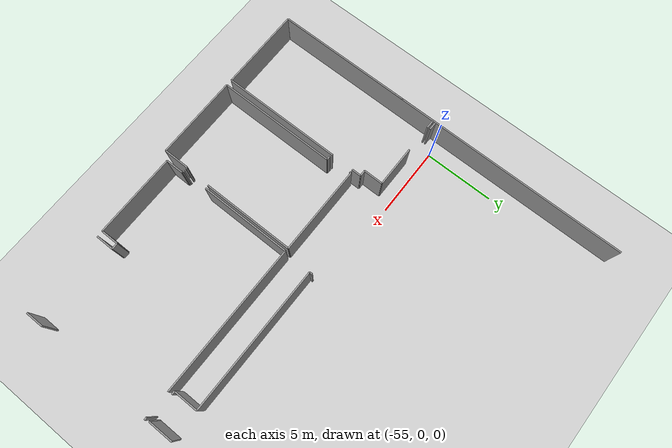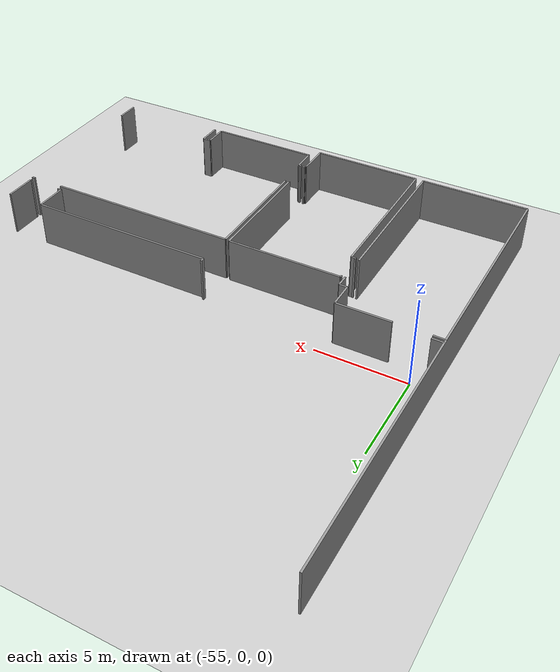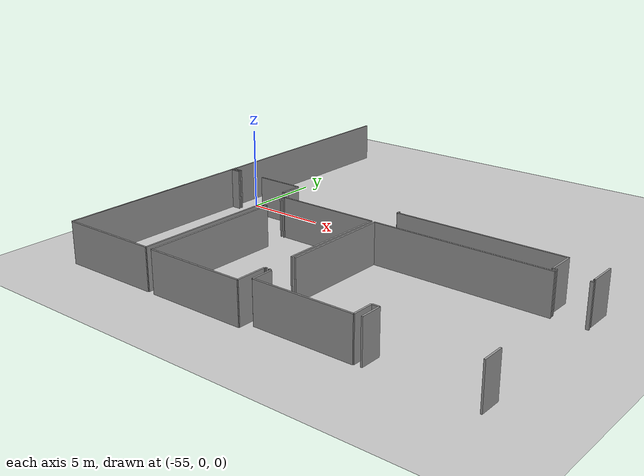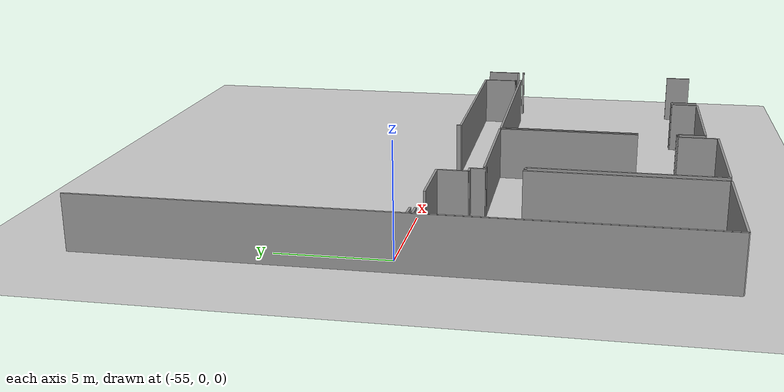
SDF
<sdf version="1.6">
 <world name="default">
  <model name="ground_plane">
   <static>1</static>
   <link name="link">
    <collision name="collision">
     <geometry><plane><normal>0 0 1</normal><size>100 100</size></plane></geometry>
     <surface><friction><ode><mu>100</mu><mu2>50</mu2></ode></friction></surface>
    </collision>
    <visual name="visual">
     <cast_shadows>0</cast_shadows>
     <geometry><plane><normal>0 0 1</normal><size>100 100</size></plane></geometry>
     <material>
      <script><uri>file://media/materials/scripts/gazebo.material</uri><name>Gazebo/Grey</name></script>
     </material>
    </visual>
   </link>
  </model>
  <model name="0510040943_A-40">
   <static>1</static>
   <link name="Wall_37">
    <collision name="Wall_37_Collision">
     <geometry><box><size>1.75153498757 0.1 2.5</size></box></geometry>
     <pose>0.875767493784 0 1.25 0 0 0</pose>
    </collision>
    <visual name="Wall_37_Visual">
     <pose>0.875767493784 0 1.25 0 0 0</pose>
     <geometry><box><size>1.75153498757 0.1 2.5</size></box></geometry>
     <material>
      <script><uri>file://media/materials/scripts/gazebo.material</uri><name>Gazebo/Grey</name></script>
      <ambient>1 1 1 1</ambient>
     </material>
    </visual>
    <pose>25.5160602831 -14.3398284873 0 0 0 -1.57079632679</pose>
   </link>
   <link name="Wall_38">
    <collision name="Wall_38_Collision">
     <geometry><box><size>0.0550565788806 0.1 2.5</size></box></geometry>
     <pose>0.0275282894403 0 1.25 0 0 0</pose>
    </collision>
    <visual name="Wall_38_Visual">
     <pose>0.0275282894403 0 1.25 0 0 0</pose>
     <geometry><box><size>0.0550565788806 0.1 2.5</size></box></geometry>
     <material>
      <script><uri>file://media/materials/scripts/gazebo.material</uri><name>Gazebo/Grey</name></script>
      <ambient>1 1 1 1</ambient>
     </material>
    </visual>
    <pose>25.5160602831 -16.0913634749 0 0 0 3.14159265359</pose>
   </link>
   <link name="Wall_39">
    <collision name="Wall_39_Collision">
     <geometry><box><size>0.224793220683 0.1 2.5</size></box></geometry>
     <pose>0.112396610342 0 1.25 0 0 0</pose>
    </collision>
    <visual name="Wall_39_Visual">
     <pose>0.112396610342 0 1.25 0 0 0</pose>
     <geometry><box><size>0.224793220683 0.1 2.5</size></box></geometry>
     <material>
      <script><uri>file://media/materials/scripts/gazebo.material</uri><name>Gazebo/Grey</name></script>
      <ambient>1 1 1 1</ambient>
     </material>
    </visual>
    <pose>23.5860354189 -16.0913634749 0 0 0 3.14159265359</pose>
   </link>
   <link name="Wall_40">
    <collision name="Wall_40_Collision">
     <geometry><box><size>1.73453595169 0.1 2.5</size></box></geometry>
     <pose>0.867267975846 0 1.25 0 0 0</pose>
    </collision>
    <visual name="Wall_40_Visual">
     <pose>0.867267975846 0 1.25 0 0 0</pose>
     <geometry><box><size>1.73453595169 0.1 2.5</size></box></geometry>
     <material>
      <script><uri>file://media/materials/scripts/gazebo.material</uri><name>Gazebo/Grey</name></script>
      <ambient>1 1 1 1</ambient>
     </material>
    </visual>
    <pose>23.3612421982 -16.0913634749 0 0 0 1.57079632679</pose>
   </link>
   <link name="Wall_41">
    <collision name="Wall_41_Collision">
     <geometry><box><size>10.3937687116 0.1 2.5</size></box></geometry>
     <pose>5.19688435581 0 1.25 0 0 0</pose>
    </collision>
    <visual name="Wall_41_Visual">
     <pose>5.19688435581 0 1.25 0 0 0</pose>
     <geometry><box><size>10.3937687116 0.1 2.5</size></box></geometry>
     <material>
      <script><uri>file://media/materials/scripts/gazebo.material</uri><name>Gazebo/Grey</name></script>
      <ambient>1 1 1 1</ambient>
     </material>
    </visual>
    <pose>23.3612421982 -14.3568275232 0 0 0 3.14159265359</pose>
   </link>
   <link name="Wall_42">
    <collision name="Wall_42_Collision">
     <geometry><box><size>0.20310042117 0.1 2.5</size></box></geometry>
     <pose>0.101550210585 0 1.25 0 0 0</pose>
    </collision>
    <visual name="Wall_42_Visual">
     <pose>0.101550210585 0 1.25 0 0 0</pose>
     <geometry><box><size>0.20310042117 0.1 2.5</size></box></geometry>
     <material>
      <script><uri>file://media/materials/scripts/gazebo.material</uri><name>Gazebo/Grey</name></script>
      <ambient>1 1 1 1</ambient>
     </material>
    </visual>
    <pose>12.9674734866 -14.3568275232 0 0 0 1.57079632679</pose>
   </link>
   <link name="Wall_44">
    <collision name="Wall_44_Collision">
     <geometry><box><size>0.618722188753 0.1 2.5</size></box></geometry>
     <pose>0.309361094376 0 1.25 0 0 0</pose>
    </collision>
    <visual name="Wall_44_Visual">
     <pose>0.309361094376 0 1.25 0 0 0</pose>
     <geometry><box><size>0.618722188753 0.1 2.5</size></box></geometry>
     <material>
      <script><uri>file://media/materials/scripts/gazebo.material</uri><name>Gazebo/Grey</name></script>
      <ambient>1 1 1 1</ambient>
     </material>
    </visual>
    <pose>0.633277515604 -14.153727102 0 0 0 3.11883202364</pose>
   </link>
   <link name="Wall_45">
    <collision name="Wall_45_Collision">
     <geometry><box><size>12.3845587862 0.1 2.5</size></box></geometry>
     <pose>6.19227939311 0 1.25 0 0 0</pose>
    </collision>
    <visual name="Wall_45_Visual">
     <pose>6.19227939311 0 1.25 0 0 0</pose>
     <geometry><box><size>12.3845587862 0.1 2.5</size></box></geometry>
     <material>
      <script><uri>file://media/materials/scripts/gazebo.material</uri><name>Gazebo/Grey</name></script>
      <ambient>1 1 1 1</ambient>
     </material>
    </visual>
    <pose>0.00976810270462 -26.7413863094 0 0 0 1.57079632679</pose>
   </link>
   <link name="Wall_46">
    <collision name="Wall_46_Collision">
     <geometry><box><size>0.63454610037 0.1 2.5</size></box></geometry>
     <pose>0.317273050185 0 1.25 0 0 0</pose>
    </collision>
    <visual name="Wall_46_Visual">
     <pose>0.317273050185 0 1.25 0 0 0</pose>
     <geometry><box><size>0.63454610037 0.1 2.5</size></box></geometry>
     <material>
      <script><uri>file://media/materials/scripts/gazebo.material</uri><name>Gazebo/Grey</name></script>
      <ambient>1 1 1 1</ambient>
     </material>
    </visual>
    <pose>0.00976810270462 -14.3568275232 0 0 0 0.0</pose>
   </link>
   <link name="Wall_47">
    <collision name="Wall_47_Collision">
     <geometry><box><size>2.96404830771 0.1 2.5</size></box></geometry>
     <pose>1.48202415385 0 1.25 0 0 0</pose>
    </collision>
    <visual name="Wall_47_Visual">
     <pose>1.48202415385 0 1.25 0 0 0</pose>
     <geometry><box><size>2.96404830771 0.1 2.5</size></box></geometry>
     <material>
      <script><uri>file://media/materials/scripts/gazebo.material</uri><name>Gazebo/Grey</name></script>
      <ambient>1 1 1 1</ambient>
     </material>
    </visual>
    <pose>2.63802202263 -14.3568275232 0 0 0 0.0</pose>
   </link>
   <link name="Wall_48">
    <collision name="Wall_48_Collision">
     <geometry><box><size>1.39138377226 0.1 2.5</size></box></geometry>
     <pose>0.695691886132 0 1.25 0 0 0</pose>
    </collision>
    <visual name="Wall_48_Visual">
     <pose>0.695691886132 0 1.25 0 0 0</pose>
     <geometry><box><size>1.39138377226 0.1 2.5</size></box></geometry>
     <material>
      <script><uri>file://media/materials/scripts/gazebo.material</uri><name>Gazebo/Grey</name></script>
      <ambient>1 1 1 1</ambient>
     </material>
    </visual>
    <pose>5.60207033034 -14.3568275232 0 0 0 -1.57079632679</pose>
   </link>
   <link name="Wall_49">
    <collision name="Wall_49_Collision">
     <geometry><box><size>0.431699396154 0.1 2.5</size></box></geometry>
     <pose>0.215849698077 0 1.25 0 0 0</pose>
    </collision>
    <visual name="Wall_49_Visual">
     <pose>0.215849698077 0 1.25 0 0 0</pose>
     <geometry><box><size>0.431699396154 0.1 2.5</size></box></geometry>
     <material>
      <script><uri>file://media/materials/scripts/gazebo.material</uri><name>Gazebo/Grey</name></script>
      <ambient>1 1 1 1</ambient>
     </material>
    </visual>
    <pose>5.60207033034 -15.7482112955 0 0 0 0.0</pose>
   </link>
   <link name="Wall_50">
    <collision name="Wall_50_Collision">
     <geometry><box><size>0.681864312173 0.1 2.5</size></box></geometry>
     <pose>0.340932156087 0 1.25 0 0 0</pose>
    </collision>
    <visual name="Wall_50_Visual">
     <pose>0.340932156087 0 1.25 0 0 0</pose>
     <geometry><box><size>0.681864312173 0.1 2.5</size></box></geometry>
     <material>
      <script><uri>file://media/materials/scripts/gazebo.material</uri><name>Gazebo/Grey</name></script>
      <ambient>1 1 1 1</ambient>
     </material>
    </visual>
    <pose>6.03376972649 -15.7482112955 0 0 0 -1.57079632679</pose>
   </link>
   <link name="Wall_51">
    <collision name="Wall_51_Collision">
     <geometry><box><size>8.67889582382 0.1 2.5</size></box></geometry>
     <pose>4.33944791191 0 1.25 0 0 0</pose>
    </collision>
    <visual name="Wall_51_Visual">
     <pose>4.33944791191 0 1.25 0 0 0</pose>
     <geometry><box><size>8.67889582382 0.1 2.5</size></box></geometry>
     <material>
      <script><uri>file://media/materials/scripts/gazebo.material</uri><name>Gazebo/Grey</name></script>
      <ambient>1 1 1 1</ambient>
     </material>
    </visual>
    <pose>6.03376972649 -18.0373725072 0 0 0 -1.57079632679</pose>
   </link>
   <link name="Wall_52">
    <collision name="Wall_52_Collision">
     <geometry><box><size>6.02405399015 0.1 2.5</size></box></geometry>
     <pose>3.01202699508 0 1.25 0 0 0</pose>
    </collision>
    <visual name="Wall_52_Visual">
     <pose>3.01202699508 0 1.25 0 0 0</pose>
     <geometry><box><size>6.02405399015 0.1 2.5</size></box></geometry>
     <material>
      <script><uri>file://media/materials/scripts/gazebo.material</uri><name>Gazebo/Grey</name></script>
      <ambient>1 1 1 1</ambient>
     </material>
    </visual>
    <pose>6.03376972649 -26.716268331 0 0 0 -3.13742302775</pose>
   </link>
   <link name="Wall_148">
    <collision name="Wall_148_Collision">
     <geometry><box><size>8.60950423707 0.1 2.5</size></box></geometry>
     <pose>4.30475211854 0 1.25 0 0 0</pose>
    </collision>
    <visual name="Wall_148_Visual">
     <pose>4.30475211854 0 1.25 0 0 0</pose>
     <geometry><box><size>8.60950423707 0.1 2.5</size></box></geometry>
     <material>
      <script><uri>file://media/materials/scripts/gazebo.material</uri><name>Gazebo/Grey</name></script>
      <ambient>1 1 1 1</ambient>
     </material>
    </visual>
    <pose>6.49033338408 -26.7307301974 0 0 0 1.57079632679</pose>
   </link>
   <link name="Wall_149">
    <collision name="Wall_149_Collision">
     <geometry><box><size>0.232024153854 0.1 2.5</size></box></geometry>
     <pose>0.116012076927 0 1.25 0 0 0</pose>
    </collision>
    <visual name="Wall_149_Visual">
     <pose>0.116012076927 0 1.25 0 0 0</pose>
     <geometry><box><size>0.232024153854 0.1 2.5</size></box></geometry>
     <material>
      <script><uri>file://media/materials/scripts/gazebo.material</uri><name>Gazebo/Grey</name></script>
      <ambient>1 1 1 1</ambient>
     </material>
    </visual>
    <pose>6.49033338408 -18.1212259603 0 0 0 3.14159265359</pose>
   </link>
   <link name="Wall_150">
    <collision name="Wall_150_Collision">
     <geometry><box><size>0.0725630486629 0.1 2.5</size></box></geometry>
     <pose>0.0362815243315 0 1.25 0 0 0</pose>
    </collision>
    <visual name="Wall_150_Visual">
     <pose>0.0362815243315 0 1.25 0 0 0</pose>
     <geometry><box><size>0.0725630486629 0.1 2.5</size></box></geometry>
     <material>
      <script><uri>file://media/materials/scripts/gazebo.material</uri><name>Gazebo/Grey</name></script>
      <ambient>1 1 1 1</ambient>
     </material>
    </visual>
    <pose>6.25830923022 -18.1212259603 0 0 0 1.57079632679</pose>
   </link>
   <link name="Wall_151">
    <collision name="Wall_151_Collision">
     <geometry><box><size>0.116836657025 0.1 2.5</size></box></geometry>
     <pose>0.0584183285127 0 1.25 0 0 0</pose>
    </collision>
    <visual name="Wall_151_Visual">
     <pose>0.0584183285127 0 1.25 0 0 0</pose>
     <geometry><box><size>0.116836657025 0.1 2.5</size></box></geometry>
     <material>
      <script><uri>file://media/materials/scripts/gazebo.material</uri><name>Gazebo/Grey</name></script>
      <ambient>1 1 1 1</ambient>
     </material>
    </visual>
    <pose>6.25830923022 -16.4584919064 0 0 0 1.57079632679</pose>
   </link>
   <link name="Wall_152">
    <collision name="Wall_152_Collision">
     <geometry><box><size>6.36829552951 0.1 2.5</size></box></geometry>
     <pose>3.18414776475 0 1.25 0 0 0</pose>
    </collision>
    <visual name="Wall_152_Visual">
     <pose>3.18414776475 0 1.25 0 0 0</pose>
     <geometry><box><size>6.36829552951 0.1 2.5</size></box></geometry>
     <material>
      <script><uri>file://media/materials/scripts/gazebo.material</uri><name>Gazebo/Grey</name></script>
      <ambient>1 1 1 1</ambient>
     </material>
    </visual>
    <pose>6.25830923022 -16.3416552494 0 0 0 0.0</pose>
   </link>
   <link name="Wall_153">
    <collision name="Wall_153_Collision">
     <geometry><box><size>6.6506824986 0.1 2.5</size></box></geometry>
     <pose>3.3253412493 0 1.25 0 0 0</pose>
    </collision>
    <visual name="Wall_153_Visual">
     <pose>3.3253412493 0 1.25 0 0 0</pose>
     <geometry><box><size>6.6506824986 0.1 2.5</size></box></geometry>
     <material>
      <script><uri>file://media/materials/scripts/gazebo.material</uri><name>Gazebo/Grey</name></script>
      <ambient>1 1 1 1</ambient>
     </material>
    </visual>
    <pose>12.6266047597 -16.3416552494 0 0 0 -1.57079632679</pose>
   </link>
   <link name="Wall_154">
    <collision name="Wall_154_Collision">
     <geometry><box><size>0.10097934744 0.1 2.5</size></box></geometry>
     <pose>0.05048967372 0 1.25 0 0 0</pose>
    </collision>
    <visual name="Wall_154_Visual">
     <pose>0.05048967372 0 1.25 0 0 0</pose>
     <geometry><box><size>0.10097934744 0.1 2.5</size></box></geometry>
     <material>
      <script><uri>file://media/materials/scripts/gazebo.material</uri><name>Gazebo/Grey</name></script>
      <ambient>1 1 1 1</ambient>
     </material>
    </visual>
    <pose>12.6266047597 -24.7805348353 0 0 0 -1.57079632679</pose>
   </link>
   <link name="Wall_155">
    <collision name="Wall_155_Collision">
     <geometry><box><size>0.0908306693053 0.1 2.5</size></box></geometry>
     <pose>0.0454153346527 0 1.25 0 0 0</pose>
    </collision>
    <visual name="Wall_155_Visual">
     <pose>0.0454153346527 0 1.25 0 0 0</pose>
     <geometry><box><size>0.0908306693053 0.1 2.5</size></box></geometry>
     <material>
      <script><uri>file://media/materials/scripts/gazebo.material</uri><name>Gazebo/Grey</name></script>
      <ambient>1 1 1 1</ambient>
     </material>
    </visual>
    <pose>12.6266047597 -24.8815141828 0 0 0 3.14159265359</pose>
   </link>
   <link name="Wall_156">
    <collision name="Wall_156_Collision">
     <geometry><box><size>1.84401481707 0.1 2.5</size></box></geometry>
     <pose>0.922007408535 0 1.25 0 0 0</pose>
    </collision>
    <visual name="Wall_156_Visual">
     <pose>0.922007408535 0 1.25 0 0 0</pose>
     <geometry><box><size>1.84401481707 0.1 2.5</size></box></geometry>
     <material>
      <script><uri>file://media/materials/scripts/gazebo.material</uri><name>Gazebo/Grey</name></script>
      <ambient>1 1 1 1</ambient>
     </material>
    </visual>
    <pose>12.5357740904 -24.8815141828 0 0 0 -1.57079632679</pose>
   </link>
   <link name="Wall_157">
    <collision name="Wall_157_Collision">
     <geometry><box><size>6.04544294377 0.1 2.5</size></box></geometry>
     <pose>3.02272147189 0 1.25 0 0 0</pose>
    </collision>
    <visual name="Wall_157_Visual">
     <pose>3.02272147189 0 1.25 0 0 0</pose>
     <geometry><box><size>6.04544294377 0.1 2.5</size></box></geometry>
     <material>
      <script><uri>file://media/materials/scripts/gazebo.material</uri><name>Gazebo/Grey</name></script>
      <ambient>1 1 1 1</ambient>
     </material>
    </visual>
    <pose>12.5357740904 -26.7255289998 0 0 0 -3.14073230337</pose>
   </link>
   <link name="Wall_158">
    <collision name="Wall_158_Collision">
     <geometry><box><size>1.2905312833 0.1 2.5</size></box></geometry>
     <pose>0.64526564165 0 1.25 0 0 0</pose>
    </collision>
    <visual name="Wall_158_Visual">
     <pose>0.64526564165 0 1.25 0 0 0</pose>
     <geometry><box><size>1.2905312833 0.1 2.5</size></box></geometry>
     <material>
      <script><uri>file://media/materials/scripts/gazebo.material</uri><name>Gazebo/Grey</name></script>
      <ambient>1 1 1 1</ambient>
     </material>
    </visual>
    <pose>12.9977926625 -26.1750900695 0 0 0 1.57079632679</pose>
   </link>
   <link name="Wall_159">
    <collision name="Wall_159_Collision">
     <geometry><box><size>0.134343126808 0.1 2.5</size></box></geometry>
     <pose>0.0671715634039 0 1.25 0 0 0</pose>
    </collision>
    <visual name="Wall_159_Visual">
     <pose>0.0671715634039 0 1.25 0 0 0</pose>
     <geometry><box><size>0.134343126808 0.1 2.5</size></box></geometry>
     <material>
      <script><uri>file://media/materials/scripts/gazebo.material</uri><name>Gazebo/Grey</name></script>
      <ambient>1 1 1 1</ambient>
     </material>
    </visual>
    <pose>12.9977926625 -24.8845587862 0 0 0 3.14159265359</pose>
   </link>
   <link name="Wall_160">
    <collision name="Wall_160_Collision">
     <geometry><box><size>0.0877860658649 0.1 2.5</size></box></geometry>
     <pose>0.0438930329325 0 1.25 0 0 0</pose>
    </collision>
    <visual name="Wall_160_Visual">
     <pose>0.0438930329325 0 1.25 0 0 0</pose>
     <geometry><box><size>0.0877860658649 0.1 2.5</size></box></geometry>
     <material>
      <script><uri>file://media/materials/scripts/gazebo.material</uri><name>Gazebo/Grey</name></script>
      <ambient>1 1 1 1</ambient>
     </material>
    </visual>
    <pose>12.8634495357 -24.8845587862 0 0 0 1.57079632679</pose>
   </link>
   <link name="Wall_161">
    <collision name="Wall_161_Collision">
     <geometry><box><size>6.61668442685 0.1 2.5</size></box></geometry>
     <pose>3.30834221343 0 1.25 0 0 0</pose>
    </collision>
    <visual name="Wall_161_Visual">
     <pose>3.30834221343 0 1.25 0 0 0</pose>
     <geometry><box><size>6.61668442685 0.1 2.5</size></box></geometry>
     <material>
      <script><uri>file://media/materials/scripts/gazebo.material</uri><name>Gazebo/Grey</name></script>
      <ambient>1 1 1 1</ambient>
     </material>
    </visual>
    <pose>12.8634495357 -22.989420003 0 0 0 1.57079632679</pose>
   </link>
   <link name="Wall_162">
    <collision name="Wall_162_Collision">
     <geometry><box><size>10.7565839549 0.1 2.5</size></box></geometry>
     <pose>5.37829197747 0 1.25 0 0 0</pose>
    </collision>
    <visual name="Wall_162_Visual">
     <pose>5.37829197747 0 1.25 0 0 0</pose>
     <geometry><box><size>10.7565839549 0.1 2.5</size></box></geometry>
     <material>
      <script><uri>file://media/materials/scripts/gazebo.material</uri><name>Gazebo/Grey</name></script>
      <ambient>1 1 1 1</ambient>
     </material>
    </visual>
    <pose>12.8634495357 -16.3727355762 0 0 0 0.0</pose>
   </link>
   <link name="Wall_163">
    <collision name="Wall_163_Collision">
     <geometry><box><size>0.191936875222 0.1 2.5</size></box></geometry>
     <pose>0.095968437611 0 1.25 0 0 0</pose>
    </collision>
    <visual name="Wall_163_Visual">
     <pose>0.095968437611 0 1.25 0 0 0</pose>
     <geometry><box><size>0.191936875222 0.1 2.5</size></box></geometry>
     <material>
      <script><uri>file://media/materials/scripts/gazebo.material</uri><name>Gazebo/Grey</name></script>
      <ambient>1 1 1 1</ambient>
     </material>
    </visual>
    <pose>25.4301770944 -16.3727355762 0 0 0 0.0</pose>
   </link>
   <link name="Wall_167">
    <collision name="Wall_167_Collision">
     <geometry><box><size>1.28748667986 0.1 2.5</size></box></geometry>
     <pose>0.64374333993 0 1.25 0 0 0</pose>
    </collision>
    <visual name="Wall_167_Visual">
     <pose>0.64374333993 0 1.25 0 0 0</pose>
     <geometry><box><size>1.28748667986 0.1 2.5</size></box></geometry>
     <material>
      <script><uri>file://media/materials/scripts/gazebo.material</uri><name>Gazebo/Grey</name></script>
      <ambient>1 1 1 1</ambient>
     </material>
    </visual>
    <pose>25.5160602831 -24.8680671842 0 0 0 -1.57079632679</pose>
   </link>
   <link name="Wall_169">
    <collision name="Wall_169_Collision">
     <geometry><box><size>1.28038260517 0.1 2.5</size></box></geometry>
     <pose>0.640191302583 0 1.25 0 0 0</pose>
    </collision>
    <visual name="Wall_169_Visual">
     <pose>0.640191302583 0 1.25 0 0 0</pose>
     <geometry><box><size>1.28038260517 0.1 2.5</size></box></geometry>
     <material>
      <script><uri>file://media/materials/scripts/gazebo.material</uri><name>Gazebo/Grey</name></script>
      <ambient>1 1 1 1</ambient>
     </material>
    </visual>
    <pose>19.4482924849 -26.1555538641 0 0 0 1.57079632679</pose>
   </link>
   <link name="Wall_170">
    <collision name="Wall_170_Collision">
     <geometry><box><size>0.441467498858 0.1 2.5</size></box></geometry>
     <pose>0.220733749429 0 1.25 0 0 0</pose>
    </collision>
    <visual name="Wall_170_Visual">
     <pose>0.220733749429 0 1.25 0 0 0</pose>
     <geometry><box><size>0.441467498858 0.1 2.5</size></box></geometry>
     <material>
      <script><uri>file://media/materials/scripts/gazebo.material</uri><name>Gazebo/Grey</name></script>
      <ambient>1 1 1 1</ambient>
     </material>
    </visual>
    <pose>19.4482924849 -24.8751712589 0 0 0 3.14159265359</pose>
   </link>
   <link name="Wall_171">
    <collision name="Wall_171_Collision">
     <geometry><box><size>1.29294159436 0.1 2.5</size></box></geometry>
     <pose>0.646470797179 0 1.25 0 0 0</pose>
    </collision>
    <visual name="Wall_171_Visual">
     <pose>0.646470797179 0 1.25 0 0 0</pose>
     <geometry><box><size>1.29294159436 0.1 2.5</size></box></geometry>
     <material>
      <script><uri>file://media/materials/scripts/gazebo.material</uri><name>Gazebo/Grey</name></script>
      <ambient>1 1 1 1</ambient>
     </material>
    </visual>
    <pose>19.006824986 -24.8751712589 0 0 0 -1.57079632679</pose>
   </link>
   <link name="Wall_172">
    <collision name="Wall_172_Collision">
     <geometry><box><size>6.00903637424 0.1 2.5</size></box></geometry>
     <pose>3.00451818712 0 1.25 0 0 0</pose>
    </collision>
    <visual name="Wall_172_Visual">
     <pose>3.00451818712 0 1.25 0 0 0</pose>
     <geometry><box><size>6.00903637424 0.1 2.5</size></box></geometry>
     <material>
      <script><uri>file://media/materials/scripts/gazebo.material</uri><name>Gazebo/Grey</name></script>
      <ambient>1 1 1 1</ambient>
     </material>
    </visual>
    <pose>19.006824986 -26.1681128533 0 0 0 -3.14043153268</pose>
   </link>
   <link name="Wall_598">
    <collision name="Wall_598_Collision">
     <geometry><box><size>26.7413863094 0.1 2.5</size></box></geometry>
     <pose>13.3706931547 0 1.25 0 0 0</pose>
    </collision>
    <visual name="Wall_598_Visual">
     <pose>13.3706931547 0 1.25 0 0 0</pose>
     <geometry><box><size>26.7413863094 0.1 2.5</size></box></geometry>
     <material>
      <script><uri>file://media/materials/scripts/gazebo.material</uri><name>Gazebo/Grey</name></script>
      <ambient>1 1 1 1</ambient>
     </material>
    </visual>
    <pose>0.0 -26.7413863094 0 0 0 1.57079632679</pose>
   </link>
   <pose>-56.15 13.3913863094 0 0 0 0</pose>
  </model>
 </world>
</sdf>
